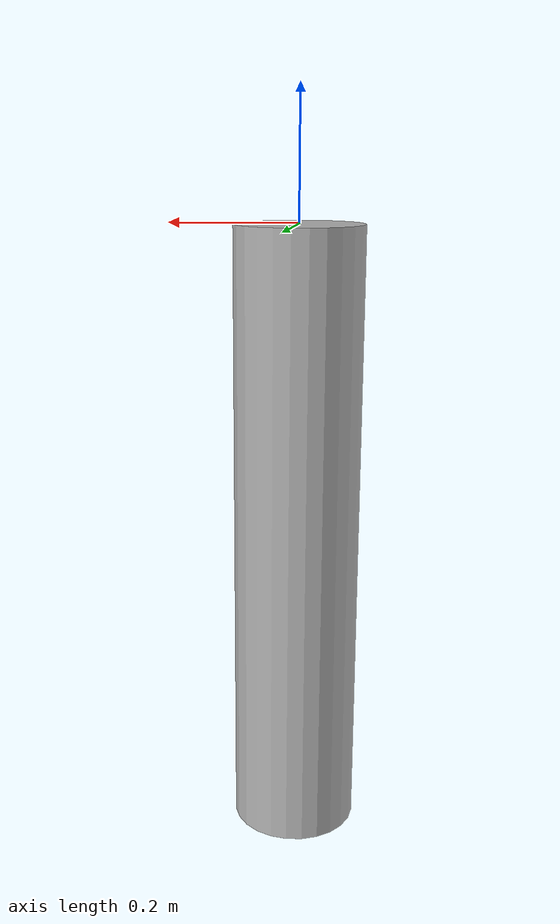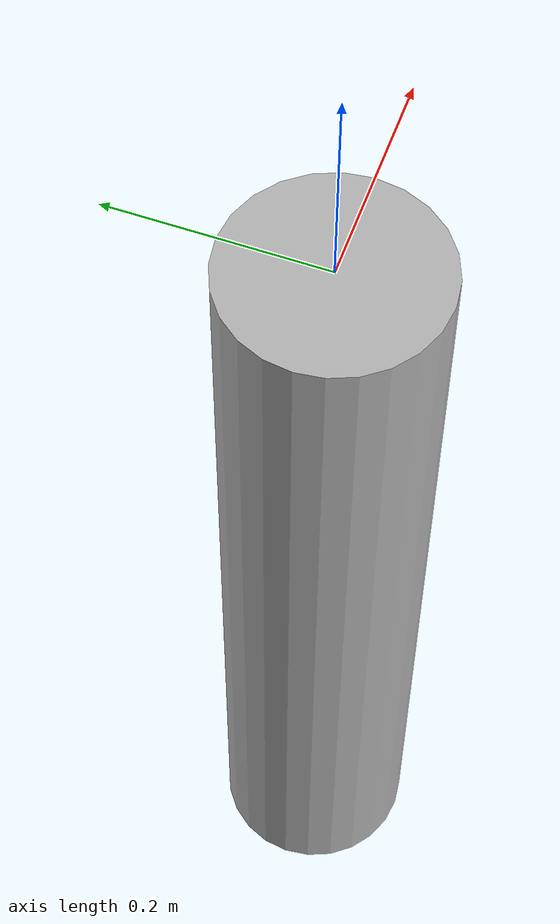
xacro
<?xml version="1.0"?>
<robot xmlns:xacro="http://ros.org/wiki/xacro" name="pedestal" >
  <!-- base ref at 0, 0, 0, robot assembly ref measured at 0, 0, 0.989 -->

  <link name="pedestal_base_link">
    <inertial>
      <origin
        xyz="-1.7398E-11 0.21585 -0.00042677"
        rpy="0 0 0" />
      <mass
        value="56.203" />
      <inertia
        ixx="4.0527"
        ixy="-2.7363E-11"
        ixz="-0.0058216"
        iyy="4.2814"
        iyz="8.5136E-05"
        izz="4.2712" />
    </inertial>
    <visual>
      <origin
        xyz="0 0 -0.4945"
        rpy="0 0 0" />
      <geometry>
        <cylinder length="0.989" radius="0.1"/>
      </geometry>
      <material name="LightGrey">
        <color rgba="0.7 0.7 0.7 1.0"/>
      </material>
    </visual>
    <collision>
      <origin
        xyz="0 0 -0.4945"
        rpy="0 0 0" />
      <geometry>
        <cylinder length="0.989" radius="0.1"/>
      </geometry>
    </collision>
  </link>

</robot>
